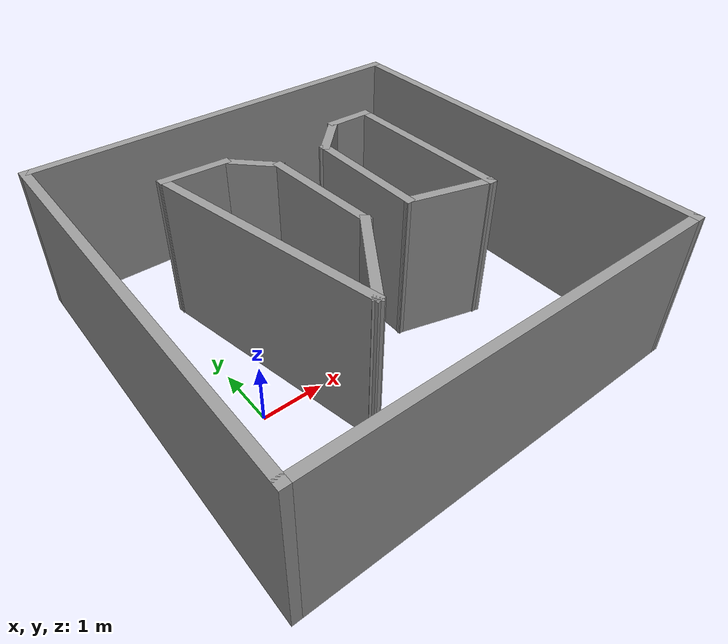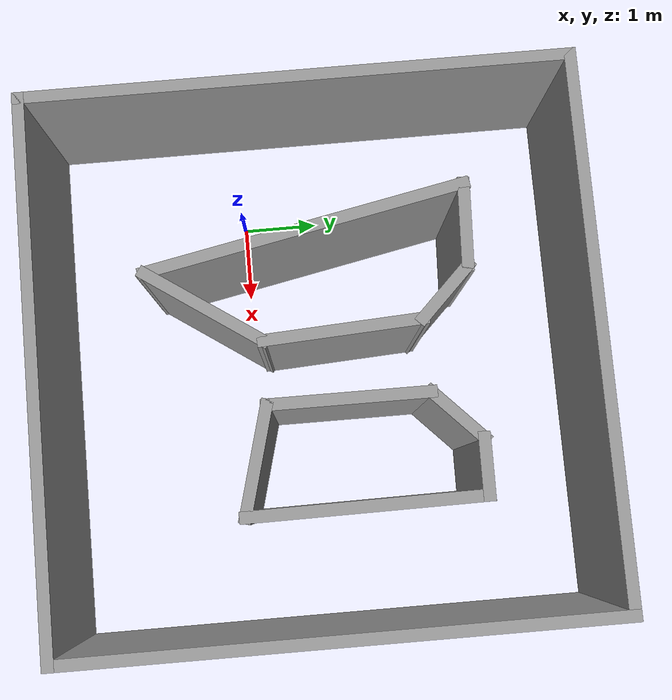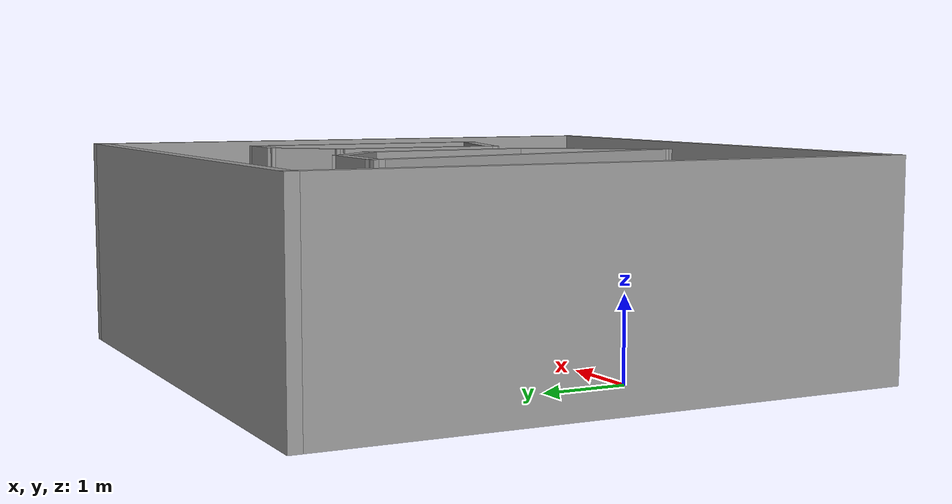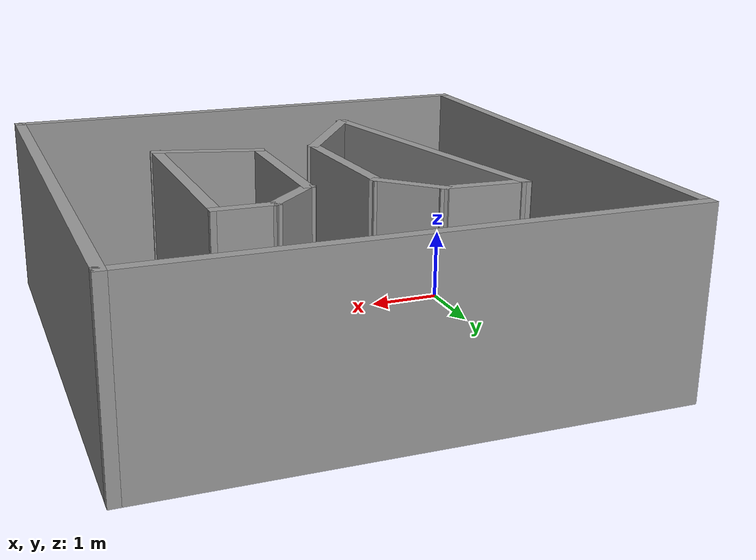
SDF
<?xml version='1.0'?>
<sdf version='1.7'>
  <model name='like_maze_map8'>
    <pose>2.145 0.855 0 0 -0 0</pose>
    <link name='Wall_0'>
      <collision name='Wall_0_Collision'>
        <geometry>
          <box>
            <size>7 0.15 2.5</size>
          </box>
        </geometry>
        <pose>0 0 1.25 0 -0 0</pose>
      </collision>
      <visual name='Wall_0_Visual'>
        <pose>0 0 1.25 0 -0 0</pose>
        <geometry>
          <box>
            <size>7 0.15 2.5</size>
          </box>
        </geometry>
        <material>
          <script>
            <uri>file://media/materials/scripts/gazebo.material</uri>
            <name>Gazebo/Grey</name>
          </script>
          <ambient>1 1 1 1</ambient>
        </material>
        <meta>
          <layer>0</layer>
        </meta>
      </visual>
      <pose>-3.425 0 0 0 -0 -1.5708</pose>
    </link>
    <link name='Wall_19'>
      <collision name='Wall_19_Collision'>
        <geometry>
          <box>
            <size>4.18948 0.15 2.5</size>
          </box>
        </geometry>
        <pose>0 0 1.25 0 -0 0</pose>
      </collision>
      <visual name='Wall_19_Visual'>
        <pose>0 0 1.25 0 -0 0</pose>
        <geometry>
          <box>
            <size>4.18948 0.15 2.5</size>
          </box>
        </geometry>
        <material>
          <script>
            <uri>file://media/materials/scripts/gazebo.material</uri>
            <name>Gazebo/Grey</name>
          </script>
          <ambient>1 1 1 1</ambient>
        </material>
        <meta>
          <layer>0</layer>
        </meta>
      </visual>
      <pose>-1.50069 -0.036801 0 0 -0 1.76672</pose>
    </link>
    <link name='Wall_29'>
      <collision name='Wall_29_Collision'>
        <geometry>
          <box>
            <size>3.03856 0.15 2.5</size>
          </box>
        </geometry>
        <pose>0 0 1.25 0 -0 0</pose>
      </collision>
      <visual name='Wall_29_Visual'>
        <pose>0 0 1.25 0 -0 0</pose>
        <geometry>
          <box>
            <size>3.03856 0.15 2.5</size>
          </box>
        </geometry>
        <material>
          <script>
            <uri>file://media/materials/scripts/gazebo.material</uri>
            <name>Gazebo/Grey</name>
          </script>
          <ambient>1 1 1 1</ambient>
        </material>
        <meta>
          <layer>0</layer>
        </meta>
      </visual>
      <pose>1.90573 0.432009 0 0 -0 1.57865</pose>
    </link>
    <link name='Wall_3'>
      <collision name='Wall_3_Collision'>
        <geometry>
          <box>
            <size>7 0.15 2.5</size>
          </box>
        </geometry>
        <pose>0 0 1.25 0 -0 0</pose>
      </collision>
      <visual name='Wall_3_Visual'>
        <pose>0 0 1.25 0 -0 0</pose>
        <geometry>
          <box>
            <size>7 0.15 2.5</size>
          </box>
        </geometry>
        <material>
          <script>
            <uri>file://media/materials/scripts/gazebo.material</uri>
            <name>Gazebo/Grey</name>
          </script>
          <ambient>1 1 1 1</ambient>
        </material>
        <meta>
          <layer>0</layer>
        </meta>
      </visual>
      <pose>-0 -3.425 0 0 -0 0</pose>
    </link>
    <link name='Wall_33'>
      <collision name='Wall_33_Collision'>
        <geometry>
          <box>
            <size>1.81469 0.15 2.5</size>
          </box>
        </geometry>
        <pose>0 0 1.25 0 -0 0</pose>
      </collision>
      <visual name='Wall_33_Visual'>
        <pose>0 0 1.25 0 -0 0</pose>
        <geometry>
          <box>
            <size>1.81469 0.15 2.5</size>
          </box>
        </geometry>
        <material>
          <script>
            <uri>file://media/materials/scripts/gazebo.material</uri>
            <name>Gazebo/Grey</name>
          </script>
          <ambient>1 1 1 1</ambient>
        </material>
        <meta>
          <layer>0</layer>
        </meta>
      </visual>
      <pose>-0.631127 -1.33014 0 0 -0 0.972495</pose>
    </link>
    <link name='Wall_4'>
      <collision name='Wall_4_Collision'>
        <geometry>
          <box>
            <size>7 0.15 2.5</size>
          </box>
        </geometry>
        <pose>0 0 1.25 0 -0 0</pose>
      </collision>
      <visual name='Wall_4_Visual'>
        <pose>0 0 1.25 0 -0 0</pose>
        <geometry>
          <box>
            <size>7 0.15 2.5</size>
          </box>
        </geometry>
        <material>
          <script>
            <uri>file://media/materials/scripts/gazebo.material</uri>
            <name>Gazebo/Grey</name>
          </script>
          <ambient>1 1 1 1</ambient>
        </material>
        <meta>
          <layer>0</layer>
        </meta>
      </visual>
      <pose>3.425 0 0 0 -0 1.5708</pose>
    </link>
    <link name='Wall_44'>
      <collision name='Wall_44_Collision'>
        <geometry>
          <box>
            <size>1.5 0.15 2.5</size>
          </box>
        </geometry>
        <pose>0 0 1.25 0 -0 0</pose>
      </collision>
      <visual name='Wall_44_Visual'>
        <pose>0 0 1.25 0 -0 0</pose>
        <geometry>
          <box>
            <size>1.5 0.15 2.5</size>
          </box>
        </geometry>
        <material>
          <script>
            <uri>file://media/materials/scripts/gazebo.material</uri>
            <name>Gazebo/Grey</name>
          </script>
          <ambient>1 1 1 1</ambient>
        </material>
        <meta>
          <layer>0</layer>
        </meta>
      </visual>
      <pose>1.26508 -0.837523 0 0 -0 2.87979</pose>
    </link>
    <link name='Wall_5'>
      <collision name='Wall_5_Collision'>
        <geometry>
          <box>
            <size>7 0.15 2.5</size>
          </box>
        </geometry>
        <pose>0 0 1.25 0 -0 0</pose>
      </collision>
      <visual name='Wall_5_Visual'>
        <pose>0 0 1.25 0 -0 0</pose>
        <geometry>
          <box>
            <size>7 0.15 2.5</size>
          </box>
        </geometry>
        <material>
          <script>
            <uri>file://media/materials/scripts/gazebo.material</uri>
            <name>Gazebo/Grey</name>
          </script>
          <ambient>1 1 1 1</ambient>
        </material>
        <meta>
          <layer>0</layer>
        </meta>
      </visual>
      <pose>-0 3.425 0 0 -0 3.14159</pose>
    </link>
    <link name='Wall_63'>
      <collision name='Wall_63_Collision'>
        <geometry>
          <box>
            <size>1 0.15 2.5</size>
          </box>
        </geometry>
        <pose>0 0 1.25 0 -0 0</pose>
      </collision>
      <visual name='Wall_63_Visual'>
        <pose>0 0 1.25 0 -0 0</pose>
        <geometry>
          <box>
            <size>1 0.15 2.5</size>
          </box>
        </geometry>
        <material>
          <script>
            <uri>file://media/materials/scripts/gazebo.material</uri>
            <name>Gazebo/Grey</name>
          </script>
          <ambient>1 1 1 1</ambient>
        </material>
        <meta>
          <layer>0</layer>
        </meta>
      </visual>
      <pose>-0.572572 1.59841 0 0 -0 -0.785398</pose>
    </link>
    <link name='Wall_66'>
      <collision name='Wall_66_Collision'>
        <geometry>
          <box>
            <size>0.9789 0.15 2.5</size>
          </box>
        </geometry>
        <pose>0 0 1.25 0 -0 0</pose>
      </collision>
      <visual name='Wall_66_Visual'>
        <pose>0 0 1.25 0 -0 0</pose>
        <geometry>
          <box>
            <size>0.9789 0.15 2.5</size>
          </box>
        </geometry>
        <material>
          <script>
            <uri>file://media/materials/scripts/gazebo.material</uri>
            <name>Gazebo/Grey</name>
          </script>
          <ambient>1 1 1 1</ambient>
        </material>
        <meta>
          <layer>0</layer>
        </meta>
      </visual>
      <pose>0.915187 1.59647 0 0 -0 -2.37555</pose>
    </link>
    <link name='Wall_68'>
      <collision name='Wall_68_Collision'>
        <geometry>
          <box>
            <size>1.1718 0.15 2.5</size>
          </box>
        </geometry>
        <pose>0 0 1.25 0 -0 0</pose>
      </collision>
      <visual name='Wall_68_Visual'>
        <pose>0 0 1.25 0 -0 0</pose>
        <geometry>
          <box>
            <size>1.1718 0.15 2.5</size>
          </box>
        </geometry>
        <material>
          <script>
            <uri>file://media/materials/scripts/gazebo.material</uri>
            <name>Gazebo/Grey</name>
          </script>
          <ambient>1 1 1 1</ambient>
        </material>
        <meta>
          <layer>0</layer>
        </meta>
      </visual>
      <pose>-1.38349 1.92161 0 0 -0 -0.044415</pose>
    </link>
    <link name='Wall_70'>
      <collision name='Wall_70_Collision'>
        <geometry>
          <box>
            <size>0.830571 0.15 2.5</size>
          </box>
        </geometry>
        <pose>0 0 1.25 0 -0 0</pose>
      </collision>
      <visual name='Wall_70_Visual'>
        <pose>0 0 1.25 0 -0 0</pose>
        <geometry>
          <box>
            <size>0.830571 0.15 2.5</size>
          </box>
        </geometry>
        <material>
          <script>
            <uri>file://media/materials/scripts/gazebo.material</uri>
            <name>Gazebo/Grey</name>
          </script>
          <ambient>1 1 1 1</ambient>
        </material>
        <meta>
          <layer>0</layer>
        </meta>
      </visual>
      <pose>1.55413 1.88002 0 0 -0 -0.011111</pose>
    </link>
    <link name='Wall_76'>
      <collision name='Wall_76_Collision'>
        <geometry>
          <box>
            <size>2.12196 0.15 2.5</size>
          </box>
        </geometry>
        <pose>0 0 1.25 0 -0 0</pose>
      </collision>
      <visual name='Wall_76_Visual'>
        <pose>0 0 1.25 0 -0 0</pose>
        <geometry>
          <box>
            <size>2.12196 0.15 2.5</size>
          </box>
        </geometry>
        <material>
          <script>
            <uri>file://media/materials/scripts/gazebo.material</uri>
            <name>Gazebo/Grey</name>
          </script>
          <ambient>1 1 1 1</ambient>
        </material>
        <meta>
          <layer>0</layer>
        </meta>
      </visual>
      <pose>0.614794 0.323157 0 0 -0 -1.57254</pose>
    </link>
    <link name='Wall_78'>
      <collision name='Wall_78_Collision'>
        <geometry>
          <box>
            <size>2.09336 0.15 2.5</size>
          </box>
        </geometry>
        <pose>0 0 1.25 0 -0 0</pose>
      </collision>
      <visual name='Wall_78_Visual'>
        <pose>0 0 1.25 0 -0 0</pose>
        <geometry>
          <box>
            <size>2.09336 0.15 2.5</size>
          </box>
        </geometry>
        <material>
          <script>
            <uri>file://media/materials/scripts/gazebo.material</uri>
            <name>Gazebo/Grey</name>
          </script>
          <ambient>1 1 1 1</ambient>
        </material>
        <meta>
          <layer>0</layer>
        </meta>
      </visual>
      <pose>-0.217185 0.327755 0 0 -0 -1.5143</pose>
    </link>
    <static>1</static>
  </model>
</sdf>
